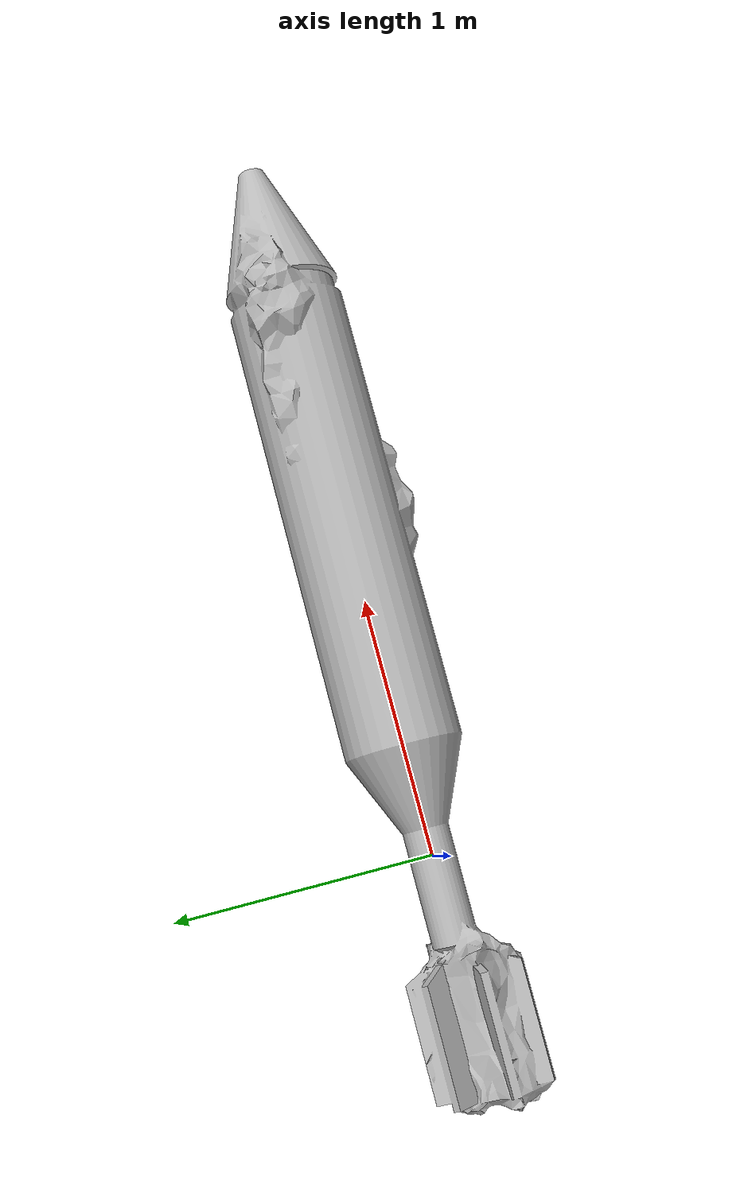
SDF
<?xml version="1.0"?>
<sdf version="1.6">
  <model name="uxo_c">
    <static>false</static>
    <link name="base_link">
      <inertial>
        <pose>0.5 0 0 0 0 0</pose>
        <mass>33.0</mass>
        <inertia>
          <ixx>0.67</ixx>
          <ixy>0.0</ixy>
          <ixz>0.0</ixz>
          <iyy>19</iyy>
          <iyz>0.0</iyz>
          <izz>19</izz>
        </inertia>
      </inertial>
      <visual name="visual">
        <geometry>
           <mesh>
            <uri>file://uxo_c/meshes/uxo_c.dae</uri>
          </mesh>
        </geometry>
      </visual>
      <collision name="collision">
        <pose>0 0 0 0 0 0</pose>
        <geometry>
          <mesh>
            <uri>file://uxo_c/meshes/uxo_c_collision.dae</uri>
          </mesh>
        </geometry>
      </collision>
    </link>
  </model>
</sdf>
